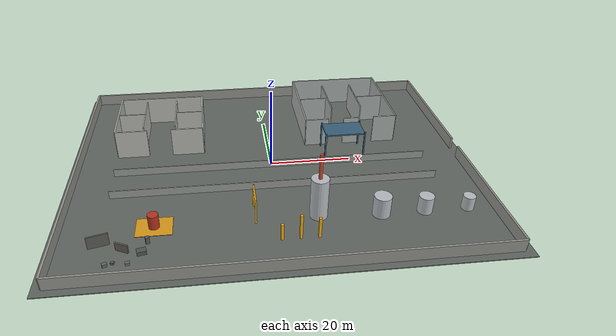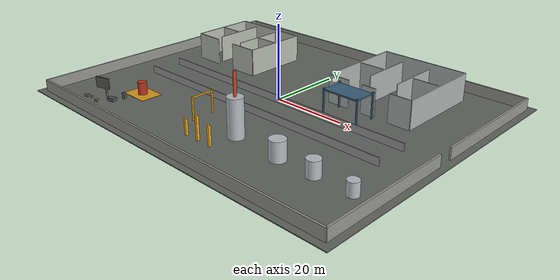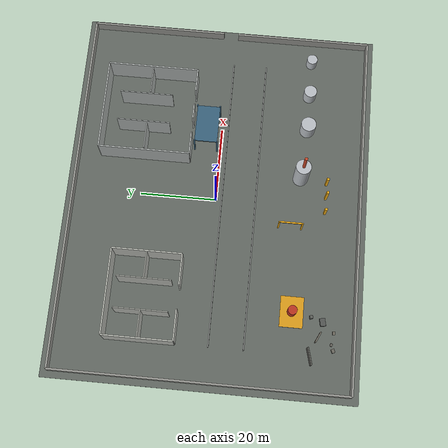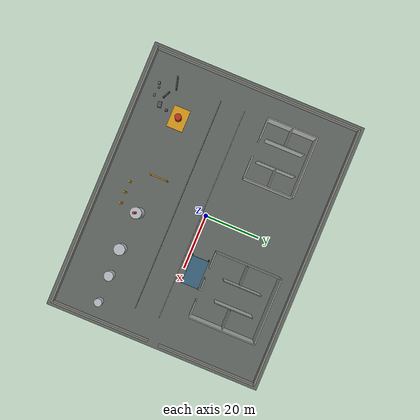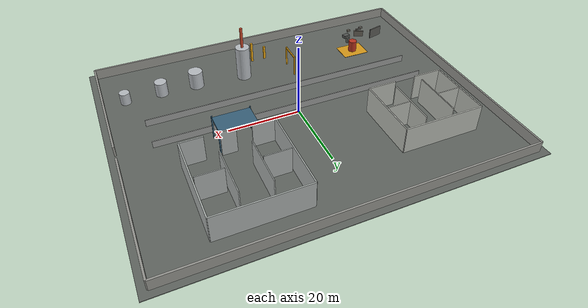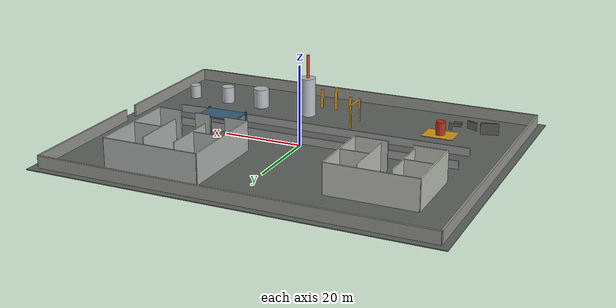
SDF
<?xml version="1.0"?>
<sdf version="1.9">

  <world name="chemical_plant_v4">
    <gravity>0 0 -9.8</gravity>
    <magnetic_field>6e-06 2.3e-05 -4.2e-05</magnetic_field>
    <atmosphere type="adiabatic"/>
    <spherical_coordinates>
      <surface_model>EARTH_WGS84</surface_model>
      <world_frame_orientation>ENU</world_frame_orientation>
      <latitude_deg>47.397971057728974</latitude_deg>
      <longitude_deg>8.546163739800146</longitude_deg>
      <elevation>0</elevation>
    </spherical_coordinates>

    <physics name="physics" type="ode">

      <max_step_size>0.004</max_step_size>

      <real_time_factor>1.0</real_time_factor>

      <real_time_update_rate>250</real_time_update_rate>

    </physics>

    <!-- Systems are supplied once through config/gz_server.config. -->

    <scene>

      <ambient>0.45 0.45 0.45 1</ambient>

      <background>0.65 0.72 0.80 1</background>

      <shadows>true</shadows>

    </scene>

    <light name="sun" type="directional">

      <pose>0 0 40 0 0 0</pose>

      <cast_shadows>true</cast_shadows>

      <diffuse>0.9 0.9 0.9 1</diffuse>

      <specular>0.2 0.2 0.2 1</specular>

      <direction>-0.4 0.2 -1</direction>

    </light>

    <model name="ground">

      <static>true</static>

      <link name="link">

        <collision name="ground_collision">

          <pose>0 0 -0.1 0 0 0</pose>

          <geometry>

            <box>

              <size>100 80 0.2</size>

            </box>

          </geometry>

        </collision>

        <visual name="ground_visual">

          <pose>0 0 -0.1 0 0 0</pose>

          <geometry>

            <box>

              <size>100 80 0.2</size>

            </box>

          </geometry>

          <material>

            <ambient>0.38 0.40 0.38 1</ambient>

            <diffuse>0.38 0.40 0.38 1</diffuse>

          </material>

        </visual>

      </link>

    </model>

    <model name="outer_wall">

      <static>true</static>

      <link name="link">

        <collision name="north_collision">

          <pose>0 38 1.5 0 0 0</pose>

          <geometry>

            <box>

              <size>96 0.5 3</size>

            </box>

          </geometry>

        </collision>

        <visual name="north_visual">

          <pose>0 38 1.5 0 0 0</pose>

          <geometry>

            <box>

              <size>96 0.5 3</size>

            </box>

          </geometry>

          <material>

            <ambient>0.58 0.58 0.56 1</ambient>

            <diffuse>0.58 0.58 0.56 1</diffuse>

          </material>

        </visual>

        <collision name="south_collision">

          <pose>0 -38 1.5 0 0 0</pose>

          <geometry>

            <box>

              <size>96 0.5 3</size>

            </box>

          </geometry>

        </collision>

        <visual name="south_visual">

          <pose>0 -38 1.5 0 0 0</pose>

          <geometry>

            <box>

              <size>96 0.5 3</size>

            </box>

          </geometry>

          <material>

            <ambient>0.58 0.58 0.56 1</ambient>

            <diffuse>0.58 0.58 0.56 1</diffuse>

          </material>

        </visual>

        <collision name="west_collision">

          <pose>-48 0 1.5 0 0 0</pose>

          <geometry>

            <box>

              <size>0.5 76 3</size>

            </box>

          </geometry>

        </collision>

        <visual name="west_visual">

          <pose>-48 0 1.5 0 0 0</pose>

          <geometry>

            <box>

              <size>0.5 76 3</size>

            </box>

          </geometry>

          <material>

            <ambient>0.58 0.58 0.56 1</ambient>

            <diffuse>0.58 0.58 0.56 1</diffuse>

          </material>

        </visual>

        <collision name="east_upper_collision">

          <pose>48 20 1.5 0 0 0</pose>

          <geometry>

            <box>

              <size>0.5 36 3</size>

            </box>

          </geometry>

        </collision>

        <visual name="east_upper_visual">

          <pose>48 20 1.5 0 0 0</pose>

          <geometry>

            <box>

              <size>0.5 36 3</size>

            </box>

          </geometry>

          <material>

            <ambient>0.58 0.58 0.56 1</ambient>

            <diffuse>0.58 0.58 0.56 1</diffuse>

          </material>

        </visual>

        <collision name="east_lower_collision">

          <pose>48 -20 1.5 0 0 0</pose>

          <geometry>

            <box>

              <size>0.5 36 3</size>

            </box>

          </geometry>

        </collision>

        <visual name="east_lower_visual">

          <pose>48 -20 1.5 0 0 0</pose>

          <geometry>

            <box>

              <size>0.5 36 3</size>

            </box>

          </geometry>

          <material>

            <ambient>0.58 0.58 0.56 1</ambient>

            <diffuse>0.58 0.58 0.56 1</diffuse>

          </material>

        </visual>

      </link>

    </model>

    <model name="main_road_walls">

      <static>true</static>

      <link name="link">

        <collision name="north_road_wall_collision">

          <pose>0 -1.5 1 0 0 0</pose>

          <geometry>

            <box>

              <size>78 0.25 2</size>

            </box>

          </geometry>

        </collision>

        <visual name="north_road_wall_visual">

          <pose>0 -1.5 1 0 0 0</pose>

          <geometry>

            <box>

              <size>78 0.25 2</size>

            </box>

          </geometry>

          <material>

            <ambient>0.60 0.61 0.60 1</ambient>

            <diffuse>0.60 0.61 0.60 1</diffuse>

          </material>

        </visual>

        <collision name="south_road_wall_collision">

          <pose>0 -10.5 1 0 0 0</pose>

          <geometry>

            <box>

              <size>78 0.25 2</size>

            </box>

          </geometry>

        </collision>

        <visual name="south_road_wall_visual">

          <pose>0 -10.5 1 0 0 0</pose>

          <geometry>

            <box>

              <size>78 0.25 2</size>

            </box>

          </geometry>

          <material>

            <ambient>0.60 0.61 0.60 1</ambient>

            <diffuse>0.60 0.61 0.60 1</diffuse>

          </material>

        </visual>

      </link>

    </model>

    <model name="building_A">

      <static>true</static>

      <link name="link">

        <collision name="north_collision">

          <pose>-28 25 3.75 0 0 0</pose>

          <geometry>

            <box>

              <size>22 0.35 7.5</size>

            </box>

          </geometry>

        </collision>

        <visual name="north_visual">

          <pose>-28 25 3.75 0 0 0</pose>

          <geometry>

            <box>

              <size>22 0.35 7.5</size>

            </box>

          </geometry>

          <material>

            <ambient>0.72 0.73 0.70 1</ambient>

            <diffuse>0.72 0.73 0.70 1</diffuse>

          </material>

        </visual>

        <collision name="west_collision">

          <pose>-39 16 3.75 0 0 0</pose>

          <geometry>

            <box>

              <size>0.35 18 7.5</size>

            </box>

          </geometry>

        </collision>

        <visual name="west_visual">

          <pose>-39 16 3.75 0 0 0</pose>

          <geometry>

            <box>

              <size>0.35 18 7.5</size>

            </box>

          </geometry>

          <material>

            <ambient>0.72 0.73 0.70 1</ambient>

            <diffuse>0.72 0.73 0.70 1</diffuse>

          </material>

        </visual>

        <collision name="east_collision">

          <pose>-17 16 3.75 0 0 0</pose>

          <geometry>

            <box>

              <size>0.35 18 7.5</size>

            </box>

          </geometry>

        </collision>

        <visual name="east_visual">

          <pose>-17 16 3.75 0 0 0</pose>

          <geometry>

            <box>

              <size>0.35 18 7.5</size>

            </box>

          </geometry>

          <material>

            <ambient>0.72 0.73 0.70 1</ambient>

            <diffuse>0.72 0.73 0.70 1</diffuse>

          </material>

        </visual>

        <collision name="south_left_collision">

          <pose>-35 7 3.75 0 0 0</pose>

          <geometry>

            <box>

              <size>8 0.35 7.5</size>

            </box>

          </geometry>

        </collision>

        <visual name="south_left_visual">

          <pose>-35 7 3.75 0 0 0</pose>

          <geometry>

            <box>

              <size>8 0.35 7.5</size>

            </box>

          </geometry>

          <material>

            <ambient>0.72 0.73 0.70 1</ambient>

            <diffuse>0.72 0.73 0.70 1</diffuse>

          </material>

        </visual>

        <collision name="south_right_collision">

          <pose>-21 7 3.75 0 0 0</pose>

          <geometry>

            <box>

              <size>8 0.35 7.5</size>

            </box>

          </geometry>

        </collision>

        <visual name="south_right_visual">

          <pose>-21 7 3.75 0 0 0</pose>

          <geometry>

            <box>

              <size>8 0.35 7.5</size>

            </box>

          </geometry>

          <material>

            <ambient>0.72 0.73 0.70 1</ambient>

            <diffuse>0.72 0.73 0.70 1</diffuse>

          </material>

        </visual>

        <collision name="partition1_collision">

          <pose>-32 16 3.75 0 0 0</pose>

          <geometry>

            <box>

              <size>0.25 14 7.5</size>

            </box>

          </geometry>

        </collision>

        <visual name="partition1_visual">

          <pose>-32 16 3.75 0 0 0</pose>

          <geometry>

            <box>

              <size>0.25 14 7.5</size>

            </box>

          </geometry>

          <material>

            <ambient>0.72 0.73 0.70 1</ambient>

            <diffuse>0.72 0.73 0.70 1</diffuse>

          </material>

        </visual>

        <collision name="partition2_collision">

          <pose>-24 16 3.75 0 0 0</pose>

          <geometry>

            <box>

              <size>0.25 14 7.5</size>

            </box>

          </geometry>

        </collision>

        <visual name="partition2_visual">

          <pose>-24 16 3.75 0 0 0</pose>

          <geometry>

            <box>

              <size>0.25 14 7.5</size>

            </box>

          </geometry>

          <material>

            <ambient>0.72 0.73 0.70 1</ambient>

            <diffuse>0.72 0.73 0.70 1</diffuse>

          </material>

        </visual>

        <collision name="cross1_left_collision">

          <pose>-35.5 16 3.75 0 0 0</pose>

          <geometry>

            <box>

              <size>7 0.25 7.5</size>

            </box>

          </geometry>

        </collision>

        <visual name="cross1_left_visual">

          <pose>-35.5 16 3.75 0 0 0</pose>

          <geometry>

            <box>

              <size>7 0.25 7.5</size>

            </box>

          </geometry>

          <material>

            <ambient>0.72 0.73 0.70 1</ambient>

            <diffuse>0.72 0.73 0.70 1</diffuse>

          </material>

        </visual>

        <collision name="cross1_right_collision">

          <pose>-20.5 16 3.75 0 0 0</pose>

          <geometry>

            <box>

              <size>7 0.25 7.5</size>

            </box>

          </geometry>

        </collision>

        <visual name="cross1_right_visual">

          <pose>-20.5 16 3.75 0 0 0</pose>

          <geometry>

            <box>

              <size>7 0.25 7.5</size>

            </box>

          </geometry>

          <material>

            <ambient>0.72 0.73 0.70 1</ambient>

            <diffuse>0.72 0.73 0.70 1</diffuse>

          </material>

        </visual>

      </link>

    </model>

    <model name="building_B">

      <static>true</static>

      <link name="link">

        <collision name="west_collision">

          <pose>10 20 3.75 0 0 0</pose>

          <geometry>

            <box>

              <size>0.35 24 7.5</size>

            </box>

          </geometry>

        </collision>

        <visual name="west_visual">

          <pose>10 20 3.75 0 0 0</pose>

          <geometry>

            <box>

              <size>0.35 24 7.5</size>

            </box>

          </geometry>

          <material>

            <ambient>0.67 0.69 0.68 1</ambient>

            <diffuse>0.67 0.69 0.68 1</diffuse>

          </material>

        </visual>

        <collision name="east_collision">

          <pose>34 20 3.75 0 0 0</pose>

          <geometry>

            <box>

              <size>0.35 24 7.5</size>

            </box>

          </geometry>

        </collision>

        <visual name="east_visual">

          <pose>34 20 3.75 0 0 0</pose>

          <geometry>

            <box>

              <size>0.35 24 7.5</size>

            </box>

          </geometry>

          <material>

            <ambient>0.67 0.69 0.68 1</ambient>

            <diffuse>0.67 0.69 0.68 1</diffuse>

          </material>

        </visual>

        <collision name="north_collision">

          <pose>22 32 3.75 0 0 0</pose>

          <geometry>

            <box>

              <size>24 0.35 7.5</size>

            </box>

          </geometry>

        </collision>

        <visual name="north_visual">

          <pose>22 32 3.75 0 0 0</pose>

          <geometry>

            <box>

              <size>24 0.35 7.5</size>

            </box>

          </geometry>

          <material>

            <ambient>0.67 0.69 0.68 1</ambient>

            <diffuse>0.67 0.69 0.68 1</diffuse>

          </material>

        </visual>

        <collision name="south_left_collision">

          <pose>13 8 3.75 0 0 0</pose>

          <geometry>

            <box>

              <size>6 0.35 7.5</size>

            </box>

          </geometry>

        </collision>

        <visual name="south_left_visual">

          <pose>13 8 3.75 0 0 0</pose>

          <geometry>

            <box>

              <size>6 0.35 7.5</size>

            </box>

          </geometry>

          <material>

            <ambient>0.67 0.69 0.68 1</ambient>

            <diffuse>0.67 0.69 0.68 1</diffuse>

          </material>

        </visual>

        <collision name="south_mid_collision">

          <pose>22 8 3.75 0 0 0</pose>

          <geometry>

            <box>

              <size>4 0.35 7.5</size>

            </box>

          </geometry>

        </collision>

        <visual name="south_mid_visual">

          <pose>22 8 3.75 0 0 0</pose>

          <geometry>

            <box>

              <size>4 0.35 7.5</size>

            </box>

          </geometry>

          <material>

            <ambient>0.67 0.69 0.68 1</ambient>

            <diffuse>0.67 0.69 0.68 1</diffuse>

          </material>

        </visual>

        <collision name="south_right_collision">

          <pose>31 8 3.75 0 0 0</pose>

          <geometry>

            <box>

              <size>6 0.35 7.5</size>

            </box>

          </geometry>

        </collision>

        <visual name="south_right_visual">

          <pose>31 8 3.75 0 0 0</pose>

          <geometry>

            <box>

              <size>6 0.35 7.5</size>

            </box>

          </geometry>

          <material>

            <ambient>0.67 0.69 0.68 1</ambient>

            <diffuse>0.67 0.69 0.68 1</diffuse>

          </material>

        </visual>

        <collision name="partition1_collision">

          <pose>18 21 3.75 0 0 0</pose>

          <geometry>

            <box>

              <size>0.25 14 7.5</size>

            </box>

          </geometry>

        </collision>

        <visual name="partition1_visual">

          <pose>18 21 3.75 0 0 0</pose>

          <geometry>

            <box>

              <size>0.25 14 7.5</size>

            </box>

          </geometry>

          <material>

            <ambient>0.67 0.69 0.68 1</ambient>

            <diffuse>0.67 0.69 0.68 1</diffuse>

          </material>

        </visual>

        <collision name="partition2_collision">

          <pose>26 21 3.75 0 0 0</pose>

          <geometry>

            <box>

              <size>0.25 14 7.5</size>

            </box>

          </geometry>

        </collision>

        <visual name="partition2_visual">

          <pose>26 21 3.75 0 0 0</pose>

          <geometry>

            <box>

              <size>0.25 14 7.5</size>

            </box>

          </geometry>

          <material>

            <ambient>0.67 0.69 0.68 1</ambient>

            <diffuse>0.67 0.69 0.68 1</diffuse>

          </material>

        </visual>

        <collision name="cross1_left_collision">

          <pose>14 20 3.75 0 0 0</pose>

          <geometry>

            <box>

              <size>7 0.25 7.5</size>

            </box>

          </geometry>

        </collision>

        <visual name="cross1_left_visual">

          <pose>14 20 3.75 0 0 0</pose>

          <geometry>

            <box>

              <size>7 0.25 7.5</size>

            </box>

          </geometry>

          <material>

            <ambient>0.67 0.69 0.68 1</ambient>

            <diffuse>0.67 0.69 0.68 1</diffuse>

          </material>

        </visual>

        <collision name="cross1_right_collision">

          <pose>30 20 3.75 0 0 0</pose>

          <geometry>

            <box>

              <size>7 0.25 7.5</size>

            </box>

          </geometry>

        </collision>

        <visual name="cross1_right_visual">

          <pose>30 20 3.75 0 0 0</pose>

          <geometry>

            <box>

              <size>7 0.25 7.5</size>

            </box>

          </geometry>

          <material>

            <ambient>0.67 0.69 0.68 1</ambient>

            <diffuse>0.67 0.69 0.68 1</diffuse>

          </material>

        </visual>

      </link>

    </model>

    <model name="reactor_tower">

      <static>true</static>

      <link name="link">

        <collision name="body_collision">

          <pose>8 -22 5 0 0 0</pose>

          <geometry>

            <cylinder>

              <radius>2</radius>

              <length>10</length>

            </cylinder>

          </geometry>

        </collision>

        <visual name="body_visual">

          <pose>8 -22 5 0 0 0</pose>

          <geometry>

            <cylinder>

              <radius>2</radius>

              <length>10</length>

            </cylinder>

          </geometry>

          <material>

            <ambient>0.72 0.74 0.76 1</ambient>

            <diffuse>0.72 0.74 0.76 1</diffuse>

          </material>

        </visual>

        <collision name="stack_collision">

          <pose>8 -22 13 0 0 0</pose>

          <geometry>

            <cylinder>

              <radius>0.4</radius>

              <length>6</length>

            </cylinder>

          </geometry>

        </collision>

        <visual name="stack_visual">

          <pose>8 -22 13 0 0 0</pose>

          <geometry>

            <cylinder>

              <radius>0.4</radius>

              <length>6</length>

            </cylinder>

          </geometry>

          <material>

            <ambient>0.78 0.28 0.16 1</ambient>

            <diffuse>0.78 0.28 0.16 1</diffuse>

          </material>

        </visual>

      </link>

    </model>

    <model name="storage_tank_1">

      <static>true</static>

      <link name="link">

        <collision name="tank_collision">

          <pose>22 -23 2.5 0 0 0</pose>

          <geometry>

            <cylinder>

              <radius>2</radius>

              <length>5</length>

            </cylinder>

          </geometry>

        </collision>

        <visual name="tank_visual">

          <pose>22 -23 2.5 0 0 0</pose>

          <geometry>

            <cylinder>

              <radius>2</radius>

              <length>5</length>

            </cylinder>

          </geometry>

          <material>

            <ambient>0.72 0.74 0.76 1</ambient>

            <diffuse>0.72 0.74 0.76 1</diffuse>

          </material>

        </visual>

      </link>

    </model>

    <model name="storage_tank_2">

      <static>true</static>

      <link name="link">

        <collision name="tank_collision">

          <pose>32 -23 2.1 0 0 0</pose>

          <geometry>

            <cylinder>

              <radius>1.7</radius>

              <length>4.2</length>

            </cylinder>

          </geometry>

        </collision>

        <visual name="tank_visual">

          <pose>32 -23 2.1 0 0 0</pose>

          <geometry>

            <cylinder>

              <radius>1.7</radius>

              <length>4.2</length>

            </cylinder>

          </geometry>

          <material>

            <ambient>0.72 0.74 0.76 1</ambient>

            <diffuse>0.72 0.74 0.76 1</diffuse>

          </material>

        </visual>

      </link>

    </model>

    <model name="storage_tank_3">

      <static>true</static>

      <link name="link">

        <collision name="tank_collision">

          <pose>42 -23 1.7 0 0 0</pose>

          <geometry>

            <cylinder>

              <radius>1.4</radius>

              <length>3.4</length>

            </cylinder>

          </geometry>

        </collision>

        <visual name="tank_visual">

          <pose>42 -23 1.7 0 0 0</pose>

          <geometry>

            <cylinder>

              <radius>1.4</radius>

              <length>3.4</length>

            </cylinder>

          </geometry>

          <material>

            <ambient>0.72 0.74 0.76 1</ambient>

            <diffuse>0.72 0.74 0.76 1</diffuse>

          </material>

        </visual>

      </link>

    </model>

    <model name="pipe_rack">

      <static>true</static>

      <link name="link">

        <collision name="post1_collision">

          <pose>14 1 3.5 0 0 0</pose>

          <geometry>

            <box>

              <size>0.35 0.35 7</size>

            </box>

          </geometry>

        </collision>

        <visual name="post1_visual">

          <pose>14 1 3.5 0 0 0</pose>

          <geometry>

            <box>

              <size>0.35 0.35 7</size>

            </box>

          </geometry>

          <material>

            <ambient>0.22 0.38 0.48 1</ambient>

            <diffuse>0.22 0.38 0.48 1</diffuse>

          </material>

        </visual>

        <collision name="post2_collision">

          <pose>14 7 3.5 0 0 0</pose>

          <geometry>

            <box>

              <size>0.35 0.35 7</size>

            </box>

          </geometry>

        </collision>

        <visual name="post2_visual">

          <pose>14 7 3.5 0 0 0</pose>

          <geometry>

            <box>

              <size>0.35 0.35 7</size>

            </box>

          </geometry>

          <material>

            <ambient>0.22 0.38 0.48 1</ambient>

            <diffuse>0.22 0.38 0.48 1</diffuse>

          </material>

        </visual>

        <collision name="post3_collision">

          <pose>24 1 3.5 0 0 0</pose>

          <geometry>

            <box>

              <size>0.35 0.35 7</size>

            </box>

          </geometry>

        </collision>

        <visual name="post3_visual">

          <pose>24 1 3.5 0 0 0</pose>

          <geometry>

            <box>

              <size>0.35 0.35 7</size>

            </box>

          </geometry>

          <material>

            <ambient>0.22 0.38 0.48 1</ambient>

            <diffuse>0.22 0.38 0.48 1</diffuse>

          </material>

        </visual>

        <collision name="post4_collision">

          <pose>24 7 3.5 0 0 0</pose>

          <geometry>

            <box>

              <size>0.35 0.35 7</size>

            </box>

          </geometry>

        </collision>

        <visual name="post4_visual">

          <pose>24 7 3.5 0 0 0</pose>

          <geometry>

            <box>

              <size>0.35 0.35 7</size>

            </box>

          </geometry>

          <material>

            <ambient>0.22 0.38 0.48 1</ambient>

            <diffuse>0.22 0.38 0.48 1</diffuse>

          </material>

        </visual>

        <collision name="beam_collision">

          <pose>19 4 6.5 0 0 0</pose>

          <geometry>

            <box>

              <size>10 6 0.35</size>

            </box>

          </geometry>

        </collision>

        <visual name="beam_visual">

          <pose>19 4 6.5 0 0 0</pose>

          <geometry>

            <box>

              <size>10 6 0.35</size>

            </box>

          </geometry>

          <material>

            <ambient>0.22 0.38 0.48 1</ambient>

            <diffuse>0.22 0.38 0.48 1</diffuse>

          </material>

        </visual>

      </link>

    </model>

    <model name="uav_obstacle_course">

      <static>true</static>

      <link name="link">

        <collision name="leg1_collision">

          <pose>-6 -23 3 0 0 0</pose>

          <geometry>

            <box>

              <size>0.35 0.35 6</size>

            </box>

          </geometry>

        </collision>

        <visual name="leg1_visual">

          <pose>-6 -23 3 0 0 0</pose>

          <geometry>

            <box>

              <size>0.35 0.35 6</size>

            </box>

          </geometry>

          <material>

            <ambient>0.95 0.68 0.08 1</ambient>

            <diffuse>0.95 0.68 0.08 1</diffuse>

          </material>

        </visual>

        <collision name="leg2_collision">

          <pose>-6 -17 3 0 0 0</pose>

          <geometry>

            <box>

              <size>0.35 0.35 6</size>

            </box>

          </geometry>

        </collision>

        <visual name="leg2_visual">

          <pose>-6 -17 3 0 0 0</pose>

          <geometry>

            <box>

              <size>0.35 0.35 6</size>

            </box>

          </geometry>

          <material>

            <ambient>0.95 0.68 0.08 1</ambient>

            <diffuse>0.95 0.68 0.08 1</diffuse>

          </material>

        </visual>

        <collision name="beam_collision">

          <pose>-6 -20 5.8 0 0 0</pose>

          <geometry>

            <box>

              <size>0.35 6.3 0.35</size>

            </box>

          </geometry>

        </collision>

        <visual name="beam_visual">

          <pose>-6 -20 5.8 0 0 0</pose>

          <geometry>

            <box>

              <size>0.35 6.3 0.35</size>

            </box>

          </geometry>

          <material>

            <ambient>0.95 0.68 0.08 1</ambient>

            <diffuse>0.95 0.68 0.08 1</diffuse>

          </material>

        </visual>

        <collision name="slalom1_collision">

          <pose>-1 -29 2 0 0 0</pose>

          <geometry>

            <box>

              <size>0.6 0.6 4</size>

            </box>

          </geometry>

        </collision>

        <visual name="slalom1_visual">

          <pose>-1 -29 2 0 0 0</pose>

          <geometry>

            <box>

              <size>0.6 0.6 4</size>

            </box>

          </geometry>

          <material>

            <ambient>0.95 0.68 0.08 1</ambient>

            <diffuse>0.95 0.68 0.08 1</diffuse>

          </material>

        </visual>

        <collision name="slalom2_collision">

          <pose>3 -29 3 0 0 0</pose>

          <geometry>

            <box>

              <size>0.6 0.6 6</size>

            </box>

          </geometry>

        </collision>

        <visual name="slalom2_visual">

          <pose>3 -29 3 0 0 0</pose>

          <geometry>

            <box>

              <size>0.6 0.6 6</size>

            </box>

          </geometry>

          <material>

            <ambient>0.95 0.68 0.08 1</ambient>

            <diffuse>0.95 0.68 0.08 1</diffuse>

          </material>

        </visual>

        <collision name="slalom3_collision">

          <pose>7 -29 2.5 0 0 0</pose>

          <geometry>

            <box>

              <size>0.6 0.6 5</size>

            </box>

          </geometry>

        </collision>

        <visual name="slalom3_visual">

          <pose>7 -29 2.5 0 0 0</pose>

          <geometry>

            <box>

              <size>0.6 0.6 5</size>

            </box>

          </geometry>

          <material>

            <ambient>0.95 0.68 0.08 1</ambient>

            <diffuse>0.95 0.68 0.08 1</diffuse>

          </material>

        </visual>

      </link>

    </model>

    <model name="hazard_area">

      <static>true</static>

      <link name="link">

        <collision name="base_collision">

          <pose>-28 -22 0.05 0 0 0</pose>

          <geometry>

            <box>

              <size>8 6 0.1</size>

            </box>

          </geometry>

        </collision>

        <visual name="base_visual">

          <pose>-28 -22 0.05 0 0 0</pose>

          <geometry>

            <box>

              <size>8 6 0.1</size>

            </box>

          </geometry>

          <material>

            <ambient>0.85 0.60 0.10 1</ambient>

            <diffuse>0.85 0.60 0.10 1</diffuse>

          </material>

        </visual>

        <collision name="source_tank_collision">

          <pose>-28 -22 1.75 0 0 0</pose>

          <geometry>

            <cylinder>

              <radius>1.2</radius>

              <length>3.4</length>

            </cylinder>

          </geometry>

        </collision>

        <visual name="source_tank_visual">

          <pose>-28 -22 1.75 0 0 0</pose>

          <geometry>

            <cylinder>

              <radius>1.2</radius>

              <length>3.4</length>

            </cylinder>

          </geometry>

          <material>

            <ambient>0.72 0.20 0.12 1</ambient>

            <diffuse>0.72 0.20 0.12 1</diffuse>

          </material>

        </visual>

      </link>

    </model>

    <model name="ruins">

      <static>true</static>

      <link name="link">

        <collision name="leaning_wall_1_collision">

          <pose>-39 -27 1.5 0 0 0.25</pose>

          <geometry>

            <box>

              <size>4.5 0.35 3</size>

            </box>

          </geometry>

        </collision>

        <visual name="leaning_wall_1_visual">

          <pose>-39 -27 1.5 0 0 0.25</pose>

          <geometry>

            <box>

              <size>4.5 0.35 3</size>

            </box>

          </geometry>

          <material>

            <ambient>0.35 0.35 0.33 1</ambient>

            <diffuse>0.35 0.35 0.33 1</diffuse>

          </material>

        </visual>

        <collision name="leaning_wall_2_collision">

          <pose>-34 -29 1 0 0 -0.45</pose>

          <geometry>

            <box>

              <size>3 0.35 2</size>

            </box>

          </geometry>

        </collision>

        <visual name="leaning_wall_2_visual">

          <pose>-34 -29 1 0 0 -0.45</pose>

          <geometry>

            <box>

              <size>3 0.35 2</size>

            </box>

          </geometry>

          <material>

            <ambient>0.42 0.40 0.36 1</ambient>

            <diffuse>0.42 0.40 0.36 1</diffuse>

          </material>

        </visual>

        <collision name="broken_slab_collision">

          <pose>-30 -30 0.45 0 0 0.2</pose>

          <geometry>

            <box>

              <size>2 1.4 0.9</size>

            </box>

          </geometry>

        </collision>

        <visual name="broken_slab_visual">

          <pose>-30 -30 0.45 0 0 0.2</pose>

          <geometry>

            <box>

              <size>2 1.4 0.9</size>

            </box>

          </geometry>

          <material>

            <ambient>0.32 0.33 0.32 1</ambient>

            <diffuse>0.32 0.33 0.32 1</diffuse>

          </material>

        </visual>

        <collision name="rubble_1_collision">

          <pose>-37 -33 0.35 0 0 0.4</pose>

          <geometry>

            <box>

              <size>1 0.8 0.7</size>

            </box>

          </geometry>

        </collision>

        <visual name="rubble_1_visual">

          <pose>-37 -33 0.35 0 0 0.4</pose>

          <geometry>

            <box>

              <size>1 0.8 0.7</size>

            </box>

          </geometry>

          <material>

            <ambient>0.40 0.39 0.36 1</ambient>

            <diffuse>0.40 0.39 0.36 1</diffuse>

          </material>

        </visual>

        <collision name="rubble_2_collision">

          <pose>-35.5 -32.5 0.25 0 0 -0.3</pose>

          <geometry>

            <box>

              <size>0.7 0.6 0.5</size>

            </box>

          </geometry>

        </collision>

        <visual name="rubble_2_visual">

          <pose>-35.5 -32.5 0.25 0 0 -0.3</pose>

          <geometry>

            <box>

              <size>0.7 0.6 0.5</size>

            </box>

          </geometry>

          <material>

            <ambient>0.38 0.37 0.34 1</ambient>

            <diffuse>0.38 0.37 0.34 1</diffuse>

          </material>

        </visual>

        <collision name="rubble_3_collision">

          <pose>-32.5 -33 0.3 0 0 0.1</pose>

          <geometry>

            <box>

              <size>0.9 0.7 0.6</size>

            </box>

          </geometry>

        </collision>

        <visual name="rubble_3_visual">

          <pose>-32.5 -33 0.3 0 0 0.1</pose>

          <geometry>

            <box>

              <size>0.9 0.7 0.6</size>

            </box>

          </geometry>

          <material>

            <ambient>0.43 0.41 0.37 1</ambient>

            <diffuse>0.43 0.41 0.37 1</diffuse>

          </material>

        </visual>

        <collision name="broken_column_collision">

          <pose>-29 -27 0.8 0 0 0.3</pose>

          <geometry>

            <box>

              <size>0.8 0.8 1.6</size>

            </box>

          </geometry>

        </collision>

        <visual name="broken_column_visual">

          <pose>-29 -27 0.8 0 0 0.3</pose>

          <geometry>

            <box>

              <size>0.8 0.8 1.6</size>

            </box>

          </geometry>

          <material>

            <ambient>0.35 0.36 0.34 1</ambient>

            <diffuse>0.35 0.36 0.34 1</diffuse>

          </material>

        </visual>

      </link>

    </model>

  </world>

</sdf>
